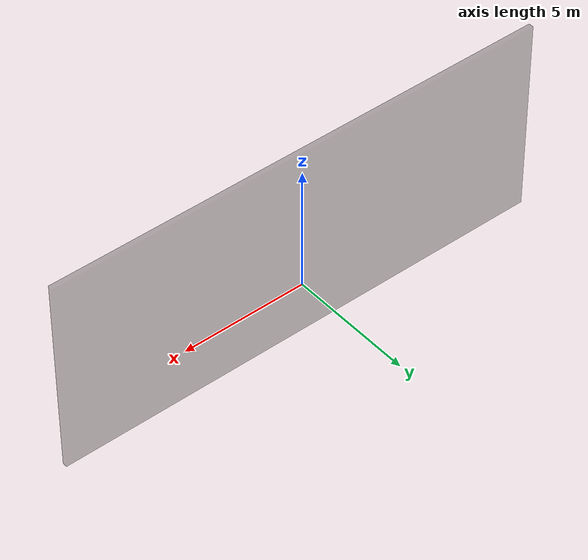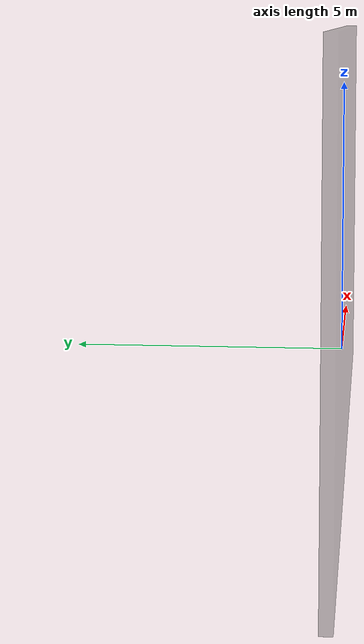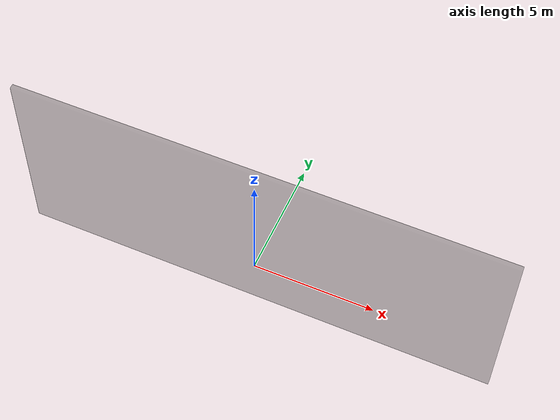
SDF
<?xml version="1.0"?>
<sdf version="1.11">
    <model name="wall">
        <pose>0 0 2.0 0 0 0</pose>
        <static>true</static>

        <link name="link">

            <visual name="visual">
                <cast_shadows>false</cast_shadows>
                <pose>0 0 0 0 0 0</pose>
                <geometry>
                    <box>
                        <size>20.0 0.2 8.0</size>
                    </box>
                </geometry>
                <material>
                    <ambient>0 0 0 0.3</ambient>
                    <diffuse>0 0 0 0.3</diffuse>
                    <specular>0 0 0 0.3</specular>
                </material>
            </visual>

        </link>
    </model>
</sdf>
